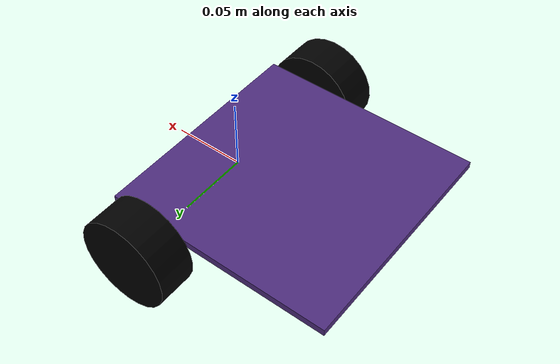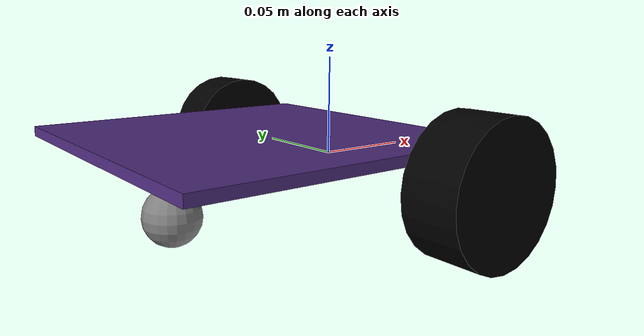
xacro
<?xml version="1.0"?>
<robot xmlns:xacro="http://www.ros.org/wiki/xacro" >
    <xacro:include filename="materials.xacro" />
    <xacro:include filename="inertia.xacro" />

    <!-- base properties -->
    <xacro:property name="chassis_xoffset" value="-0.048" />
    <xacro:property name="chassis_zoffset" value="0.013" />
    <xacro:property name="chassis_depth" value="0.16" />
    <xacro:property name="chassis_width" value="0.16" />
    <xacro:property name="chassis_height" value="0.005" />
    <xacro:property name="chassis_mass" value="0.2" />
    <!-- wheel properties -->
    <xacro:property name="wheel_yoffset" value="0.095" />
    <xacro:property name="wheel_radius" value="0.0325" />
    <xacro:property name="wheel_width" value="0.027" />
    <xacro:property name="wheel_mass" value="0.032" />
    <!-- caster properties -->
    <xacro:property name="caster_xoffset" value="-0.092" />
    <xacro:property name="caster_radius" value="0.014" />
    <xacro:property name="caster_mass" value="0.05" />
    <!-- lidar properties -->
    <xacro:property name="lidar_radius" value="0.035" />
    <xacro:property name="lidar_height" value="0.02" />
    <xacro:property name="lidar_zoff" value="0.08" />
    <xacro:property name="lidar_mass" value="0.17" />

    <!-- Wheel macro -->
    <xacro:macro name="wheel" params="prefix y_reflect">
        <joint name="${prefix}_joint" type="continuous">
            <parent link="base_link" />
            <child link="${prefix}_link" />
            <origin xyz="0 ${y_reflect*wheel_yoffset} 0" rpy="${-pi/2} 0 0" />
            <axis xyz="0 0 1" />
        </joint>

        <link name="${prefix}_link">
            <visual>
                <geometry>
                    <cylinder radius="${wheel_radius}" length="${wheel_width}" />
                </geometry>
                <material name="black" />
            </visual>

            <collision>
                <geometry>
                    <cylinder radius="${wheel_radius}" length="${wheel_width}" />
                </geometry>
            </collision>

            <xacro:cylinder_inertia m="${wheel_mass}" r="${wheel_radius}" h="${wheel_width}" />

        </link>

        <gazebo reference="${prefix}_link">
            <material>Gazebo/Black</material>
        </gazebo>
    </xacro:macro>

    <!-- DUMMY BASE -->
    <link name="base_link">
    </link>

    <!-- FOOTPRINT -->
    <joint name="footprint_joint" type="fixed">
        <parent link="base_link" />
        <child link="base_footprint" />
        <origin xyz="${chassis_xoffset} 0 ${-wheel_radius}" />
    </joint>

    <link name="base_footprint">
    </link>

    <!-- CHASSIS -->
    <joint name="chassis_joint" type="fixed">
        <parent link="base_link" />
        <child link="chassis_link" />
        <origin xyz="${chassis_xoffset} 0 ${chassis_zoffset}" />
    </joint>

    <link name="chassis_link">
        <visual>
            <geometry>
                <box size="${chassis_depth} ${chassis_width} ${chassis_height}"/>
            </geometry>
            <material name="purple"/>
        </visual>

        <collision>
            <geometry>
                <box size="${chassis_depth} ${chassis_width} ${chassis_height}"/>
            </geometry>
        </collision>

        <xacro:box_inertia m="${chassis_mass}" x="${chassis_depth}" y="${chassis_width}" z="${chassis_height}" />
    </link>

    <gazebo reference="chassis_link">
        <material>Gazebo/Purple</material>
    </gazebo>

    <!-- CASTER WHEEL -->
    <joint name="caster_joint" type="fixed">
        <parent link="base_link" />
        <child link="caster_link" />
        <origin xyz="${caster_xoffset} 0.0 ${caster_radius-wheel_radius}" />
    </joint>

    <link name="caster_link">
        <visual>
            <geometry>
                <sphere radius="${caster_radius}" />
            </geometry>
            <material name="gray" />
        </visual>

        <collision>
            <geometry>
                <sphere radius="${caster_radius}" />
            </geometry>
        </collision>

        <xacro:sphere_inertia m="${caster_mass}" r="${caster_radius}" />
    </link>

    <gazebo reference="caster_link">
        <mu1>0.00000001</mu1>
        <mu2>0.00000001</mu2>
        <material>Gazebo/Gray</material>
    </gazebo>

    <!-- LEFT AND RIGHT WHEEL -->
    <xacro:wheel prefix="left_wheel" y_reflect="1" />
    <xacro:wheel prefix="right_wheel" y_reflect="-1" />

</robot>

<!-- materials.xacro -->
<robot xmlns:xacro="http://www.ros.org/wiki/xacro" >

    <material name="black">
        <color rgba="0 0 0 1" />
    </material>

    <material name="white">
        <color rgba="1 1 1 1" />
    </material>

    <material name="purple">
        <color rgba="0.3098 0.1765 0.4980 1" />
    </material>

    <material name="orange">
        <color rgba="1 0.6471 0 1" />
    </material>

    <material name="navy">
        <color rgba="0 0 0.5 1" />
    </material>

    <material name="gray">
        <color rgba="0.5 0.5 0.5 1" />
    </material>

</robot>

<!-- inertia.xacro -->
<robot xmlns:xacro="http://www.ros.org/wiki/xacro" >
    <!-- inertial macro -->
    <xacro:macro name="box_inertia" params="m x y z">
        <inertial>
            <mass value="${m}" />
            <inertia ixx="${(m/12) * (y*y + z*z)}" ixy="0.0" ixz="0.0" iyy="${(m/12) * (z*z + x*x)}" iyz="0.0" izz="${(m/12) * (x*x + y*y)}" />
        </inertial>
    </xacro:macro>

    <xacro:macro name="cylinder_inertia" params="m r h">
        <inertial>
            <mass value="${m}" />
            <inertia ixx="${(m/12) * (3*r*r + h*h)}" ixy="0" ixz="0" iyy="${(m/12) * (3*r*r + h*h)}" iyz="0" izz="${(m/2) * (r*r)}" />
        </inertial>
    </xacro:macro>

    <xacro:macro name="sphere_inertia" params="m r">
        <inertial>
            <mass value="${m}" />
            <inertia ixx="${(2/5) * m * (r*r)}" ixy="0.0" ixz="0.0" iyy="${(2/5) * m * (r*r)}" iyz="0.0" izz="${(2/5) * m * (r*r)}" />
        </inertial>
    </xacro:macro>

</robot>
